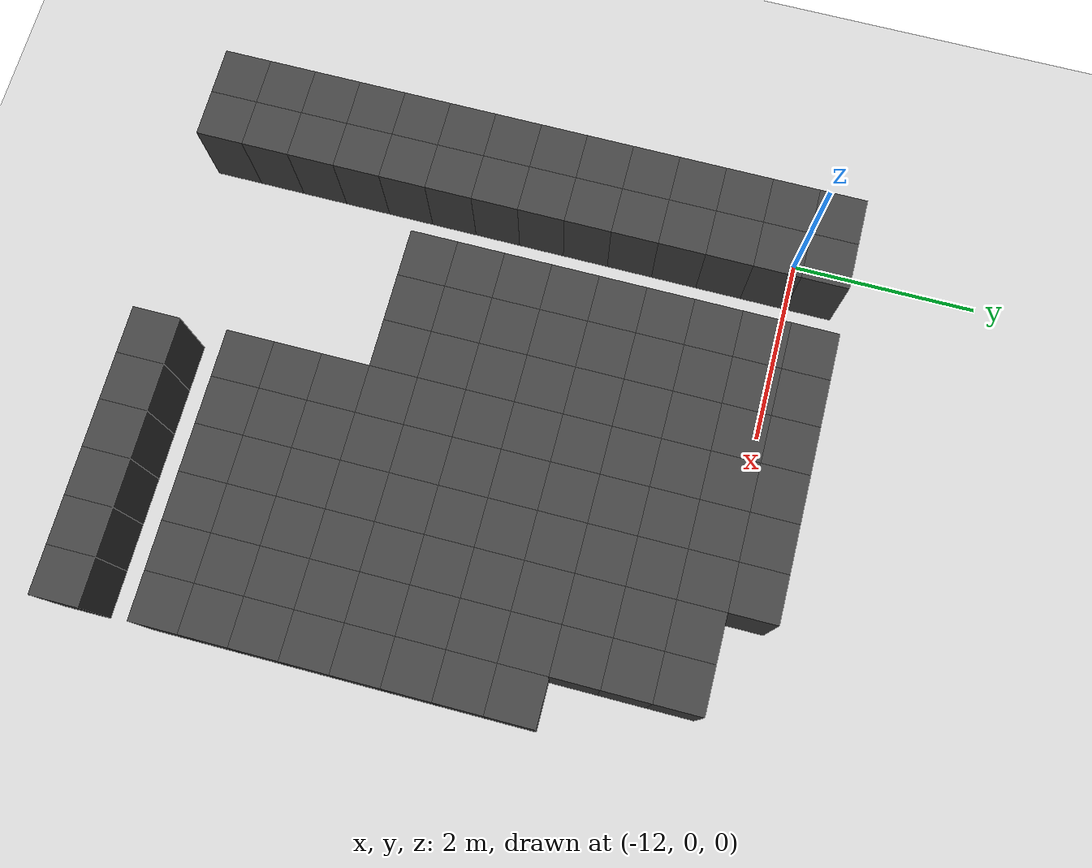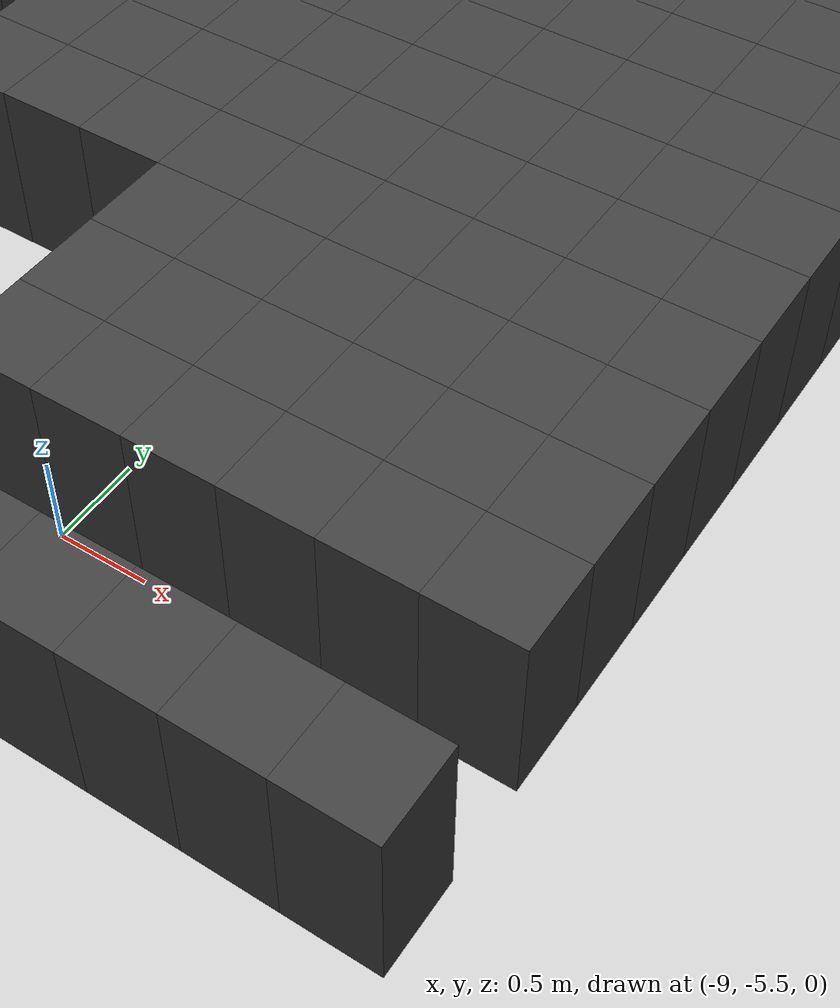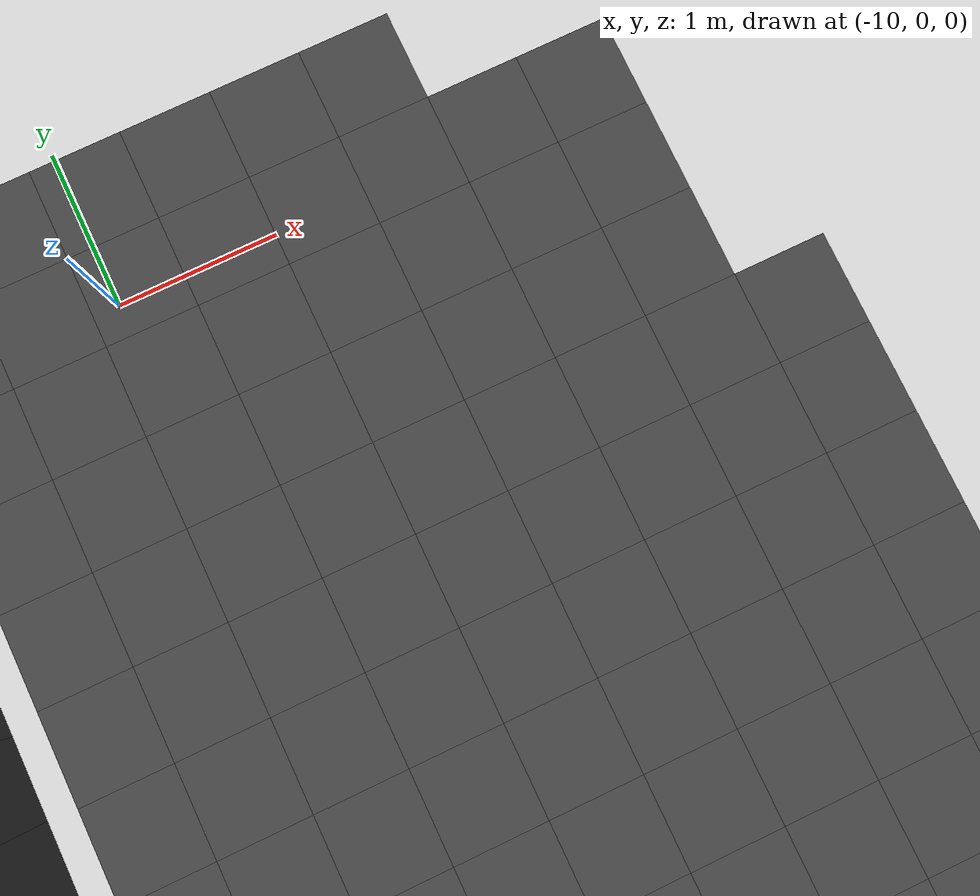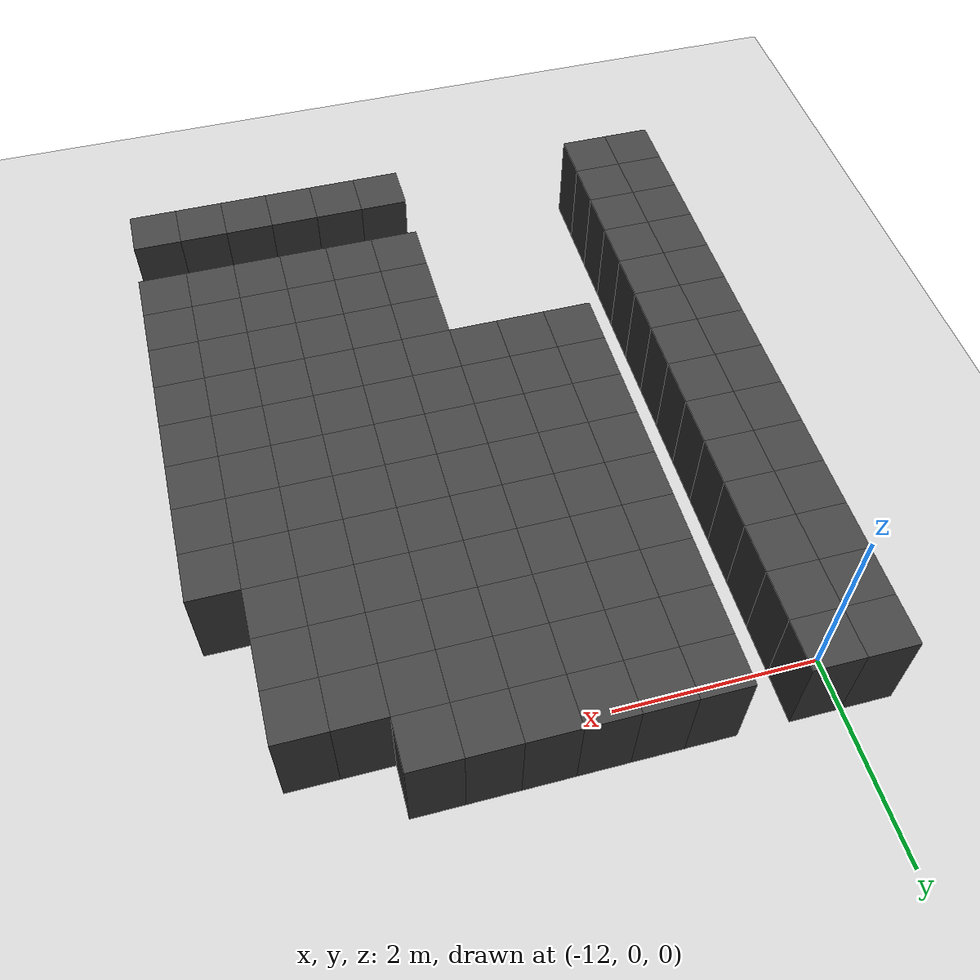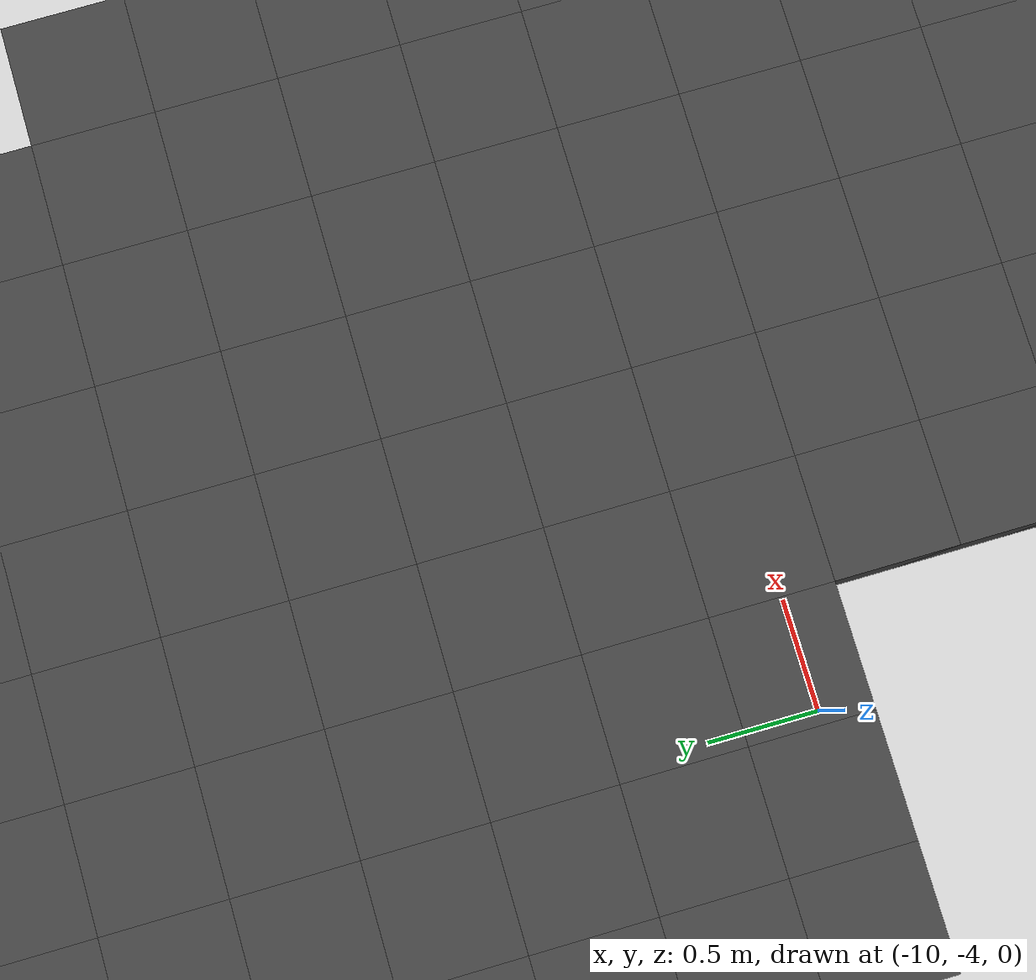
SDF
<sdf version="1.7">
 <world name="map_10777">
  <model name="ground_plane">
   <static>true</static>
   <link name="link">
    <collision name="collision">
     <geometry><plane><normal>0 0 1</normal><size>200 200</size></plane></geometry>
    </collision>
    <visual name="visual">
     <geometry><plane><normal>0 0 1</normal><size>200 200</size></plane></geometry>
     <material><ambient>0.8 0.8 0.8 1</ambient><diffuse>0.8 0.8 0.8 1</diffuse></material>
    </visual>
   </link>
  </model>
  <model name="maze_environment">
   <static>true</static>
   <link name="wall_1091">
    <pose>-12.250 0.250 0.500 0 0 0</pose>
    <collision name="col"><geometry><box><size>0.5 0.5 1.0</size></box></geometry></collision>
    <visual name="vis">
     <geometry><box><size>0.5 0.5 1.0</size></box></geometry>
     <material><ambient>0.15 0.15 0.15 1</ambient><diffuse>0.25 0.25 0.25 1</diffuse></material>
    </visual>
   </link>
   <link name="wall_1092">
    <pose>-11.750 0.250 0.500 0 0 0</pose>
    <collision name="col"><geometry><box><size>0.5 0.5 1.0</size></box></geometry></collision>
    <visual name="vis">
     <geometry><box><size>0.5 0.5 1.0</size></box></geometry>
     <material><ambient>0.15 0.15 0.15 1</ambient><diffuse>0.25 0.25 0.25 1</diffuse></material>
    </visual>
   </link>
   <link name="wall_1093">
    <pose>-10.750 0.250 0.500 0 0 0</pose>
    <collision name="col"><geometry><box><size>0.5 0.5 1.0</size></box></geometry></collision>
    <visual name="vis">
     <geometry><box><size>0.5 0.5 1.0</size></box></geometry>
     <material><ambient>0.15 0.15 0.15 1</ambient><diffuse>0.25 0.25 0.25 1</diffuse></material>
    </visual>
   </link>
   <link name="wall_1094">
    <pose>-10.250 0.250 0.500 0 0 0</pose>
    <collision name="col"><geometry><box><size>0.5 0.5 1.0</size></box></geometry></collision>
    <visual name="vis">
     <geometry><box><size>0.5 0.5 1.0</size></box></geometry>
     <material><ambient>0.15 0.15 0.15 1</ambient><diffuse>0.25 0.25 0.25 1</diffuse></material>
    </visual>
   </link>
   <link name="wall_1095">
    <pose>-9.750 0.250 0.500 0 0 0</pose>
    <collision name="col"><geometry><box><size>0.5 0.5 1.0</size></box></geometry></collision>
    <visual name="vis">
     <geometry><box><size>0.5 0.5 1.0</size></box></geometry>
     <material><ambient>0.15 0.15 0.15 1</ambient><diffuse>0.25 0.25 0.25 1</diffuse></material>
    </visual>
   </link>
   <link name="wall_1096">
    <pose>-9.250 0.250 0.500 0 0 0</pose>
    <collision name="col"><geometry><box><size>0.5 0.5 1.0</size></box></geometry></collision>
    <visual name="vis">
     <geometry><box><size>0.5 0.5 1.0</size></box></geometry>
     <material><ambient>0.15 0.15 0.15 1</ambient><diffuse>0.25 0.25 0.25 1</diffuse></material>
    </visual>
   </link>
   <link name="wall_1097">
    <pose>-8.750 0.250 0.500 0 0 0</pose>
    <collision name="col"><geometry><box><size>0.5 0.5 1.0</size></box></geometry></collision>
    <visual name="vis">
     <geometry><box><size>0.5 0.5 1.0</size></box></geometry>
     <material><ambient>0.15 0.15 0.15 1</ambient><diffuse>0.25 0.25 0.25 1</diffuse></material>
    </visual>
   </link>
   <link name="wall_1098">
    <pose>-8.250 0.250 0.500 0 0 0</pose>
    <collision name="col"><geometry><box><size>0.5 0.5 1.0</size></box></geometry></collision>
    <visual name="vis">
     <geometry><box><size>0.5 0.5 1.0</size></box></geometry>
     <material><ambient>0.15 0.15 0.15 1</ambient><diffuse>0.25 0.25 0.25 1</diffuse></material>
    </visual>
   </link>
   <link name="wall_1129">
    <pose>-12.250 -0.250 0.500 0 0 0</pose>
    <collision name="col"><geometry><box><size>0.5 0.5 1.0</size></box></geometry></collision>
    <visual name="vis">
     <geometry><box><size>0.5 0.5 1.0</size></box></geometry>
     <material><ambient>0.15 0.15 0.15 1</ambient><diffuse>0.25 0.25 0.25 1</diffuse></material>
    </visual>
   </link>
   <link name="wall_1130">
    <pose>-11.750 -0.250 0.500 0 0 0</pose>
    <collision name="col"><geometry><box><size>0.5 0.5 1.0</size></box></geometry></collision>
    <visual name="vis">
     <geometry><box><size>0.5 0.5 1.0</size></box></geometry>
     <material><ambient>0.15 0.15 0.15 1</ambient><diffuse>0.25 0.25 0.25 1</diffuse></material>
    </visual>
   </link>
   <link name="wall_1131">
    <pose>-10.750 -0.250 0.500 0 0 0</pose>
    <collision name="col"><geometry><box><size>0.5 0.5 1.0</size></box></geometry></collision>
    <visual name="vis">
     <geometry><box><size>0.5 0.5 1.0</size></box></geometry>
     <material><ambient>0.15 0.15 0.15 1</ambient><diffuse>0.25 0.25 0.25 1</diffuse></material>
    </visual>
   </link>
   <link name="wall_1132">
    <pose>-10.250 -0.250 0.500 0 0 0</pose>
    <collision name="col"><geometry><box><size>0.5 0.5 1.0</size></box></geometry></collision>
    <visual name="vis">
     <geometry><box><size>0.5 0.5 1.0</size></box></geometry>
     <material><ambient>0.15 0.15 0.15 1</ambient><diffuse>0.25 0.25 0.25 1</diffuse></material>
    </visual>
   </link>
   <link name="wall_1133">
    <pose>-9.750 -0.250 0.500 0 0 0</pose>
    <collision name="col"><geometry><box><size>0.5 0.5 1.0</size></box></geometry></collision>
    <visual name="vis">
     <geometry><box><size>0.5 0.5 1.0</size></box></geometry>
     <material><ambient>0.15 0.15 0.15 1</ambient><diffuse>0.25 0.25 0.25 1</diffuse></material>
    </visual>
   </link>
   <link name="wall_1134">
    <pose>-9.250 -0.250 0.500 0 0 0</pose>
    <collision name="col"><geometry><box><size>0.5 0.5 1.0</size></box></geometry></collision>
    <visual name="vis">
     <geometry><box><size>0.5 0.5 1.0</size></box></geometry>
     <material><ambient>0.15 0.15 0.15 1</ambient><diffuse>0.25 0.25 0.25 1</diffuse></material>
    </visual>
   </link>
   <link name="wall_1135">
    <pose>-8.750 -0.250 0.500 0 0 0</pose>
    <collision name="col"><geometry><box><size>0.5 0.5 1.0</size></box></geometry></collision>
    <visual name="vis">
     <geometry><box><size>0.5 0.5 1.0</size></box></geometry>
     <material><ambient>0.15 0.15 0.15 1</ambient><diffuse>0.25 0.25 0.25 1</diffuse></material>
    </visual>
   </link>
   <link name="wall_1136">
    <pose>-8.250 -0.250 0.500 0 0 0</pose>
    <collision name="col"><geometry><box><size>0.5 0.5 1.0</size></box></geometry></collision>
    <visual name="vis">
     <geometry><box><size>0.5 0.5 1.0</size></box></geometry>
     <material><ambient>0.15 0.15 0.15 1</ambient><diffuse>0.25 0.25 0.25 1</diffuse></material>
    </visual>
   </link>
   <link name="wall_1137">
    <pose>-7.750 -0.250 0.500 0 0 0</pose>
    <collision name="col"><geometry><box><size>0.5 0.5 1.0</size></box></geometry></collision>
    <visual name="vis">
     <geometry><box><size>0.5 0.5 1.0</size></box></geometry>
     <material><ambient>0.15 0.15 0.15 1</ambient><diffuse>0.25 0.25 0.25 1</diffuse></material>
    </visual>
   </link>
   <link name="wall_1138">
    <pose>-7.250 -0.250 0.500 0 0 0</pose>
    <collision name="col"><geometry><box><size>0.5 0.5 1.0</size></box></geometry></collision>
    <visual name="vis">
     <geometry><box><size>0.5 0.5 1.0</size></box></geometry>
     <material><ambient>0.15 0.15 0.15 1</ambient><diffuse>0.25 0.25 0.25 1</diffuse></material>
    </visual>
   </link>
   <link name="wall_1173">
    <pose>-12.250 -0.750 0.500 0 0 0</pose>
    <collision name="col"><geometry><box><size>0.5 0.5 1.0</size></box></geometry></collision>
    <visual name="vis">
     <geometry><box><size>0.5 0.5 1.0</size></box></geometry>
     <material><ambient>0.15 0.15 0.15 1</ambient><diffuse>0.25 0.25 0.25 1</diffuse></material>
    </visual>
   </link>
   <link name="wall_1174">
    <pose>-11.750 -0.750 0.500 0 0 0</pose>
    <collision name="col"><geometry><box><size>0.5 0.5 1.0</size></box></geometry></collision>
    <visual name="vis">
     <geometry><box><size>0.5 0.5 1.0</size></box></geometry>
     <material><ambient>0.15 0.15 0.15 1</ambient><diffuse>0.25 0.25 0.25 1</diffuse></material>
    </visual>
   </link>
   <link name="wall_1175">
    <pose>-10.750 -0.750 0.500 0 0 0</pose>
    <collision name="col"><geometry><box><size>0.5 0.5 1.0</size></box></geometry></collision>
    <visual name="vis">
     <geometry><box><size>0.5 0.5 1.0</size></box></geometry>
     <material><ambient>0.15 0.15 0.15 1</ambient><diffuse>0.25 0.25 0.25 1</diffuse></material>
    </visual>
   </link>
   <link name="wall_1176">
    <pose>-10.250 -0.750 0.500 0 0 0</pose>
    <collision name="col"><geometry><box><size>0.5 0.5 1.0</size></box></geometry></collision>
    <visual name="vis">
     <geometry><box><size>0.5 0.5 1.0</size></box></geometry>
     <material><ambient>0.15 0.15 0.15 1</ambient><diffuse>0.25 0.25 0.25 1</diffuse></material>
    </visual>
   </link>
   <link name="wall_1177">
    <pose>-9.750 -0.750 0.500 0 0 0</pose>
    <collision name="col"><geometry><box><size>0.5 0.5 1.0</size></box></geometry></collision>
    <visual name="vis">
     <geometry><box><size>0.5 0.5 1.0</size></box></geometry>
     <material><ambient>0.15 0.15 0.15 1</ambient><diffuse>0.25 0.25 0.25 1</diffuse></material>
    </visual>
   </link>
   <link name="wall_1178">
    <pose>-9.250 -0.750 0.500 0 0 0</pose>
    <collision name="col"><geometry><box><size>0.5 0.5 1.0</size></box></geometry></collision>
    <visual name="vis">
     <geometry><box><size>0.5 0.5 1.0</size></box></geometry>
     <material><ambient>0.15 0.15 0.15 1</ambient><diffuse>0.25 0.25 0.25 1</diffuse></material>
    </visual>
   </link>
   <link name="wall_1179">
    <pose>-8.750 -0.750 0.500 0 0 0</pose>
    <collision name="col"><geometry><box><size>0.5 0.5 1.0</size></box></geometry></collision>
    <visual name="vis">
     <geometry><box><size>0.5 0.5 1.0</size></box></geometry>
     <material><ambient>0.15 0.15 0.15 1</ambient><diffuse>0.25 0.25 0.25 1</diffuse></material>
    </visual>
   </link>
   <link name="wall_1180">
    <pose>-8.250 -0.750 0.500 0 0 0</pose>
    <collision name="col"><geometry><box><size>0.5 0.5 1.0</size></box></geometry></collision>
    <visual name="vis">
     <geometry><box><size>0.5 0.5 1.0</size></box></geometry>
     <material><ambient>0.15 0.15 0.15 1</ambient><diffuse>0.25 0.25 0.25 1</diffuse></material>
    </visual>
   </link>
   <link name="wall_1181">
    <pose>-7.750 -0.750 0.500 0 0 0</pose>
    <collision name="col"><geometry><box><size>0.5 0.5 1.0</size></box></geometry></collision>
    <visual name="vis">
     <geometry><box><size>0.5 0.5 1.0</size></box></geometry>
     <material><ambient>0.15 0.15 0.15 1</ambient><diffuse>0.25 0.25 0.25 1</diffuse></material>
    </visual>
   </link>
   <link name="wall_1182">
    <pose>-7.250 -0.750 0.500 0 0 0</pose>
    <collision name="col"><geometry><box><size>0.5 0.5 1.0</size></box></geometry></collision>
    <visual name="vis">
     <geometry><box><size>0.5 0.5 1.0</size></box></geometry>
     <material><ambient>0.15 0.15 0.15 1</ambient><diffuse>0.25 0.25 0.25 1</diffuse></material>
    </visual>
   </link>
   <link name="wall_1211">
    <pose>-12.250 -1.250 0.500 0 0 0</pose>
    <collision name="col"><geometry><box><size>0.5 0.5 1.0</size></box></geometry></collision>
    <visual name="vis">
     <geometry><box><size>0.5 0.5 1.0</size></box></geometry>
     <material><ambient>0.15 0.15 0.15 1</ambient><diffuse>0.25 0.25 0.25 1</diffuse></material>
    </visual>
   </link>
   <link name="wall_1212">
    <pose>-11.750 -1.250 0.500 0 0 0</pose>
    <collision name="col"><geometry><box><size>0.5 0.5 1.0</size></box></geometry></collision>
    <visual name="vis">
     <geometry><box><size>0.5 0.5 1.0</size></box></geometry>
     <material><ambient>0.15 0.15 0.15 1</ambient><diffuse>0.25 0.25 0.25 1</diffuse></material>
    </visual>
   </link>
   <link name="wall_1213">
    <pose>-10.750 -1.250 0.500 0 0 0</pose>
    <collision name="col"><geometry><box><size>0.5 0.5 1.0</size></box></geometry></collision>
    <visual name="vis">
     <geometry><box><size>0.5 0.5 1.0</size></box></geometry>
     <material><ambient>0.15 0.15 0.15 1</ambient><diffuse>0.25 0.25 0.25 1</diffuse></material>
    </visual>
   </link>
   <link name="wall_1214">
    <pose>-10.250 -1.250 0.500 0 0 0</pose>
    <collision name="col"><geometry><box><size>0.5 0.5 1.0</size></box></geometry></collision>
    <visual name="vis">
     <geometry><box><size>0.5 0.5 1.0</size></box></geometry>
     <material><ambient>0.15 0.15 0.15 1</ambient><diffuse>0.25 0.25 0.25 1</diffuse></material>
    </visual>
   </link>
   <link name="wall_1215">
    <pose>-9.750 -1.250 0.500 0 0 0</pose>
    <collision name="col"><geometry><box><size>0.5 0.5 1.0</size></box></geometry></collision>
    <visual name="vis">
     <geometry><box><size>0.5 0.5 1.0</size></box></geometry>
     <material><ambient>0.15 0.15 0.15 1</ambient><diffuse>0.25 0.25 0.25 1</diffuse></material>
    </visual>
   </link>
   <link name="wall_1216">
    <pose>-9.250 -1.250 0.500 0 0 0</pose>
    <collision name="col"><geometry><box><size>0.5 0.5 1.0</size></box></geometry></collision>
    <visual name="vis">
     <geometry><box><size>0.5 0.5 1.0</size></box></geometry>
     <material><ambient>0.15 0.15 0.15 1</ambient><diffuse>0.25 0.25 0.25 1</diffuse></material>
    </visual>
   </link>
   <link name="wall_1217">
    <pose>-8.750 -1.250 0.500 0 0 0</pose>
    <collision name="col"><geometry><box><size>0.5 0.5 1.0</size></box></geometry></collision>
    <visual name="vis">
     <geometry><box><size>0.5 0.5 1.0</size></box></geometry>
     <material><ambient>0.15 0.15 0.15 1</ambient><diffuse>0.25 0.25 0.25 1</diffuse></material>
    </visual>
   </link>
   <link name="wall_1218">
    <pose>-8.250 -1.250 0.500 0 0 0</pose>
    <collision name="col"><geometry><box><size>0.5 0.5 1.0</size></box></geometry></collision>
    <visual name="vis">
     <geometry><box><size>0.5 0.5 1.0</size></box></geometry>
     <material><ambient>0.15 0.15 0.15 1</ambient><diffuse>0.25 0.25 0.25 1</diffuse></material>
    </visual>
   </link>
   <link name="wall_1219">
    <pose>-7.750 -1.250 0.500 0 0 0</pose>
    <collision name="col"><geometry><box><size>0.5 0.5 1.0</size></box></geometry></collision>
    <visual name="vis">
     <geometry><box><size>0.5 0.5 1.0</size></box></geometry>
     <material><ambient>0.15 0.15 0.15 1</ambient><diffuse>0.25 0.25 0.25 1</diffuse></material>
    </visual>
   </link>
   <link name="wall_1220">
    <pose>-7.250 -1.250 0.500 0 0 0</pose>
    <collision name="col"><geometry><box><size>0.5 0.5 1.0</size></box></geometry></collision>
    <visual name="vis">
     <geometry><box><size>0.5 0.5 1.0</size></box></geometry>
     <material><ambient>0.15 0.15 0.15 1</ambient><diffuse>0.25 0.25 0.25 1</diffuse></material>
    </visual>
   </link>
   <link name="wall_1254">
    <pose>-12.250 -1.750 0.500 0 0 0</pose>
    <collision name="col"><geometry><box><size>0.5 0.5 1.0</size></box></geometry></collision>
    <visual name="vis">
     <geometry><box><size>0.5 0.5 1.0</size></box></geometry>
     <material><ambient>0.15 0.15 0.15 1</ambient><diffuse>0.25 0.25 0.25 1</diffuse></material>
    </visual>
   </link>
   <link name="wall_1255">
    <pose>-11.750 -1.750 0.500 0 0 0</pose>
    <collision name="col"><geometry><box><size>0.5 0.5 1.0</size></box></geometry></collision>
    <visual name="vis">
     <geometry><box><size>0.5 0.5 1.0</size></box></geometry>
     <material><ambient>0.15 0.15 0.15 1</ambient><diffuse>0.25 0.25 0.25 1</diffuse></material>
    </visual>
   </link>
   <link name="wall_1256">
    <pose>-10.750 -1.750 0.500 0 0 0</pose>
    <collision name="col"><geometry><box><size>0.5 0.5 1.0</size></box></geometry></collision>
    <visual name="vis">
     <geometry><box><size>0.5 0.5 1.0</size></box></geometry>
     <material><ambient>0.15 0.15 0.15 1</ambient><diffuse>0.25 0.25 0.25 1</diffuse></material>
    </visual>
   </link>
   <link name="wall_1257">
    <pose>-10.250 -1.750 0.500 0 0 0</pose>
    <collision name="col"><geometry><box><size>0.5 0.5 1.0</size></box></geometry></collision>
    <visual name="vis">
     <geometry><box><size>0.5 0.5 1.0</size></box></geometry>
     <material><ambient>0.15 0.15 0.15 1</ambient><diffuse>0.25 0.25 0.25 1</diffuse></material>
    </visual>
   </link>
   <link name="wall_1258">
    <pose>-9.750 -1.750 0.500 0 0 0</pose>
    <collision name="col"><geometry><box><size>0.5 0.5 1.0</size></box></geometry></collision>
    <visual name="vis">
     <geometry><box><size>0.5 0.5 1.0</size></box></geometry>
     <material><ambient>0.15 0.15 0.15 1</ambient><diffuse>0.25 0.25 0.25 1</diffuse></material>
    </visual>
   </link>
   <link name="wall_1259">
    <pose>-9.250 -1.750 0.500 0 0 0</pose>
    <collision name="col"><geometry><box><size>0.5 0.5 1.0</size></box></geometry></collision>
    <visual name="vis">
     <geometry><box><size>0.5 0.5 1.0</size></box></geometry>
     <material><ambient>0.15 0.15 0.15 1</ambient><diffuse>0.25 0.25 0.25 1</diffuse></material>
    </visual>
   </link>
   <link name="wall_1260">
    <pose>-8.750 -1.750 0.500 0 0 0</pose>
    <collision name="col"><geometry><box><size>0.5 0.5 1.0</size></box></geometry></collision>
    <visual name="vis">
     <geometry><box><size>0.5 0.5 1.0</size></box></geometry>
     <material><ambient>0.15 0.15 0.15 1</ambient><diffuse>0.25 0.25 0.25 1</diffuse></material>
    </visual>
   </link>
   <link name="wall_1261">
    <pose>-8.250 -1.750 0.500 0 0 0</pose>
    <collision name="col"><geometry><box><size>0.5 0.5 1.0</size></box></geometry></collision>
    <visual name="vis">
     <geometry><box><size>0.5 0.5 1.0</size></box></geometry>
     <material><ambient>0.15 0.15 0.15 1</ambient><diffuse>0.25 0.25 0.25 1</diffuse></material>
    </visual>
   </link>
   <link name="wall_1262">
    <pose>-7.750 -1.750 0.500 0 0 0</pose>
    <collision name="col"><geometry><box><size>0.5 0.5 1.0</size></box></geometry></collision>
    <visual name="vis">
     <geometry><box><size>0.5 0.5 1.0</size></box></geometry>
     <material><ambient>0.15 0.15 0.15 1</ambient><diffuse>0.25 0.25 0.25 1</diffuse></material>
    </visual>
   </link>
   <link name="wall_1263">
    <pose>-7.250 -1.750 0.500 0 0 0</pose>
    <collision name="col"><geometry><box><size>0.5 0.5 1.0</size></box></geometry></collision>
    <visual name="vis">
     <geometry><box><size>0.5 0.5 1.0</size></box></geometry>
     <material><ambient>0.15 0.15 0.15 1</ambient><diffuse>0.25 0.25 0.25 1</diffuse></material>
    </visual>
   </link>
   <link name="wall_1264">
    <pose>-6.750 -1.750 0.500 0 0 0</pose>
    <collision name="col"><geometry><box><size>0.5 0.5 1.0</size></box></geometry></collision>
    <visual name="vis">
     <geometry><box><size>0.5 0.5 1.0</size></box></geometry>
     <material><ambient>0.15 0.15 0.15 1</ambient><diffuse>0.25 0.25 0.25 1</diffuse></material>
    </visual>
   </link>
   <link name="wall_1297">
    <pose>-12.250 -2.250 0.500 0 0 0</pose>
    <collision name="col"><geometry><box><size>0.5 0.5 1.0</size></box></geometry></collision>
    <visual name="vis">
     <geometry><box><size>0.5 0.5 1.0</size></box></geometry>
     <material><ambient>0.15 0.15 0.15 1</ambient><diffuse>0.25 0.25 0.25 1</diffuse></material>
    </visual>
   </link>
   <link name="wall_1298">
    <pose>-11.750 -2.250 0.500 0 0 0</pose>
    <collision name="col"><geometry><box><size>0.5 0.5 1.0</size></box></geometry></collision>
    <visual name="vis">
     <geometry><box><size>0.5 0.5 1.0</size></box></geometry>
     <material><ambient>0.15 0.15 0.15 1</ambient><diffuse>0.25 0.25 0.25 1</diffuse></material>
    </visual>
   </link>
   <link name="wall_1299">
    <pose>-10.750 -2.250 0.500 0 0 0</pose>
    <collision name="col"><geometry><box><size>0.5 0.5 1.0</size></box></geometry></collision>
    <visual name="vis">
     <geometry><box><size>0.5 0.5 1.0</size></box></geometry>
     <material><ambient>0.15 0.15 0.15 1</ambient><diffuse>0.25 0.25 0.25 1</diffuse></material>
    </visual>
   </link>
   <link name="wall_1300">
    <pose>-10.250 -2.250 0.500 0 0 0</pose>
    <collision name="col"><geometry><box><size>0.5 0.5 1.0</size></box></geometry></collision>
    <visual name="vis">
     <geometry><box><size>0.5 0.5 1.0</size></box></geometry>
     <material><ambient>0.15 0.15 0.15 1</ambient><diffuse>0.25 0.25 0.25 1</diffuse></material>
    </visual>
   </link>
   <link name="wall_1301">
    <pose>-9.750 -2.250 0.500 0 0 0</pose>
    <collision name="col"><geometry><box><size>0.5 0.5 1.0</size></box></geometry></collision>
    <visual name="vis">
     <geometry><box><size>0.5 0.5 1.0</size></box></geometry>
     <material><ambient>0.15 0.15 0.15 1</ambient><diffuse>0.25 0.25 0.25 1</diffuse></material>
    </visual>
   </link>
   <link name="wall_1302">
    <pose>-9.250 -2.250 0.500 0 0 0</pose>
    <collision name="col"><geometry><box><size>0.5 0.5 1.0</size></box></geometry></collision>
    <visual name="vis">
     <geometry><box><size>0.5 0.5 1.0</size></box></geometry>
     <material><ambient>0.15 0.15 0.15 1</ambient><diffuse>0.25 0.25 0.25 1</diffuse></material>
    </visual>
   </link>
   <link name="wall_1303">
    <pose>-8.750 -2.250 0.500 0 0 0</pose>
    <collision name="col"><geometry><box><size>0.5 0.5 1.0</size></box></geometry></collision>
    <visual name="vis">
     <geometry><box><size>0.5 0.5 1.0</size></box></geometry>
     <material><ambient>0.15 0.15 0.15 1</ambient><diffuse>0.25 0.25 0.25 1</diffuse></material>
    </visual>
   </link>
   <link name="wall_1304">
    <pose>-8.250 -2.250 0.500 0 0 0</pose>
    <collision name="col"><geometry><box><size>0.5 0.5 1.0</size></box></geometry></collision>
    <visual name="vis">
     <geometry><box><size>0.5 0.5 1.0</size></box></geometry>
     <material><ambient>0.15 0.15 0.15 1</ambient><diffuse>0.25 0.25 0.25 1</diffuse></material>
    </visual>
   </link>
   <link name="wall_1305">
    <pose>-7.750 -2.250 0.500 0 0 0</pose>
    <collision name="col"><geometry><box><size>0.5 0.5 1.0</size></box></geometry></collision>
    <visual name="vis">
     <geometry><box><size>0.5 0.5 1.0</size></box></geometry>
     <material><ambient>0.15 0.15 0.15 1</ambient><diffuse>0.25 0.25 0.25 1</diffuse></material>
    </visual>
   </link>
   <link name="wall_1306">
    <pose>-7.250 -2.250 0.500 0 0 0</pose>
    <collision name="col"><geometry><box><size>0.5 0.5 1.0</size></box></geometry></collision>
    <visual name="vis">
     <geometry><box><size>0.5 0.5 1.0</size></box></geometry>
     <material><ambient>0.15 0.15 0.15 1</ambient><diffuse>0.25 0.25 0.25 1</diffuse></material>
    </visual>
   </link>
   <link name="wall_1307">
    <pose>-6.750 -2.250 0.500 0 0 0</pose>
    <collision name="col"><geometry><box><size>0.5 0.5 1.0</size></box></geometry></collision>
    <visual name="vis">
     <geometry><box><size>0.5 0.5 1.0</size></box></geometry>
     <material><ambient>0.15 0.15 0.15 1</ambient><diffuse>0.25 0.25 0.25 1</diffuse></material>
    </visual>
   </link>
   <link name="wall_1345">
    <pose>-12.250 -2.750 0.500 0 0 0</pose>
    <collision name="col"><geometry><box><size>0.5 0.5 1.0</size></box></geometry></collision>
    <visual name="vis">
     <geometry><box><size>0.5 0.5 1.0</size></box></geometry>
     <material><ambient>0.15 0.15 0.15 1</ambient><diffuse>0.25 0.25 0.25 1</diffuse></material>
    </visual>
   </link>
   <link name="wall_1346">
    <pose>-11.750 -2.750 0.500 0 0 0</pose>
    <collision name="col"><geometry><box><size>0.5 0.5 1.0</size></box></geometry></collision>
    <visual name="vis">
     <geometry><box><size>0.5 0.5 1.0</size></box></geometry>
     <material><ambient>0.15 0.15 0.15 1</ambient><diffuse>0.25 0.25 0.25 1</diffuse></material>
    </visual>
   </link>
   <link name="wall_1347">
    <pose>-10.750 -2.750 0.500 0 0 0</pose>
    <collision name="col"><geometry><box><size>0.5 0.5 1.0</size></box></geometry></collision>
    <visual name="vis">
     <geometry><box><size>0.5 0.5 1.0</size></box></geometry>
     <material><ambient>0.15 0.15 0.15 1</ambient><diffuse>0.25 0.25 0.25 1</diffuse></material>
    </visual>
   </link>
   <link name="wall_1348">
    <pose>-10.250 -2.750 0.500 0 0 0</pose>
    <collision name="col"><geometry><box><size>0.5 0.5 1.0</size></box></geometry></collision>
    <visual name="vis">
     <geometry><box><size>0.5 0.5 1.0</size></box></geometry>
     <material><ambient>0.15 0.15 0.15 1</ambient><diffuse>0.25 0.25 0.25 1</diffuse></material>
    </visual>
   </link>
   <link name="wall_1349">
    <pose>-9.750 -2.750 0.500 0 0 0</pose>
    <collision name="col"><geometry><box><size>0.5 0.5 1.0</size></box></geometry></collision>
    <visual name="vis">
     <geometry><box><size>0.5 0.5 1.0</size></box></geometry>
     <material><ambient>0.15 0.15 0.15 1</ambient><diffuse>0.25 0.25 0.25 1</diffuse></material>
    </visual>
   </link>
   <link name="wall_1350">
    <pose>-9.250 -2.750 0.500 0 0 0</pose>
    <collision name="col"><geometry><box><size>0.5 0.5 1.0</size></box></geometry></collision>
    <visual name="vis">
     <geometry><box><size>0.5 0.5 1.0</size></box></geometry>
     <material><ambient>0.15 0.15 0.15 1</ambient><diffuse>0.25 0.25 0.25 1</diffuse></material>
    </visual>
   </link>
   <link name="wall_1351">
    <pose>-8.750 -2.750 0.500 0 0 0</pose>
    <collision name="col"><geometry><box><size>0.5 0.5 1.0</size></box></geometry></collision>
    <visual name="vis">
     <geometry><box><size>0.5 0.5 1.0</size></box></geometry>
     <material><ambient>0.15 0.15 0.15 1</ambient><diffuse>0.25 0.25 0.25 1</diffuse></material>
    </visual>
   </link>
   <link name="wall_1352">
    <pose>-8.250 -2.750 0.500 0 0 0</pose>
    <collision name="col"><geometry><box><size>0.5 0.5 1.0</size></box></geometry></collision>
    <visual name="vis">
     <geometry><box><size>0.5 0.5 1.0</size></box></geometry>
     <material><ambient>0.15 0.15 0.15 1</ambient><diffuse>0.25 0.25 0.25 1</diffuse></material>
    </visual>
   </link>
   <link name="wall_1353">
    <pose>-7.750 -2.750 0.500 0 0 0</pose>
    <collision name="col"><geometry><box><size>0.5 0.5 1.0</size></box></geometry></collision>
    <visual name="vis">
     <geometry><box><size>0.5 0.5 1.0</size></box></geometry>
     <material><ambient>0.15 0.15 0.15 1</ambient><diffuse>0.25 0.25 0.25 1</diffuse></material>
    </visual>
   </link>
   <link name="wall_1354">
    <pose>-7.250 -2.750 0.500 0 0 0</pose>
    <collision name="col"><geometry><box><size>0.5 0.5 1.0</size></box></geometry></collision>
    <visual name="vis">
     <geometry><box><size>0.5 0.5 1.0</size></box></geometry>
     <material><ambient>0.15 0.15 0.15 1</ambient><diffuse>0.25 0.25 0.25 1</diffuse></material>
    </visual>
   </link>
   <link name="wall_1355">
    <pose>-6.750 -2.750 0.500 0 0 0</pose>
    <collision name="col"><geometry><box><size>0.5 0.5 1.0</size></box></geometry></collision>
    <visual name="vis">
     <geometry><box><size>0.5 0.5 1.0</size></box></geometry>
     <material><ambient>0.15 0.15 0.15 1</ambient><diffuse>0.25 0.25 0.25 1</diffuse></material>
    </visual>
   </link>
   <link name="wall_1393">
    <pose>-12.250 -3.250 0.500 0 0 0</pose>
    <collision name="col"><geometry><box><size>0.5 0.5 1.0</size></box></geometry></collision>
    <visual name="vis">
     <geometry><box><size>0.5 0.5 1.0</size></box></geometry>
     <material><ambient>0.15 0.15 0.15 1</ambient><diffuse>0.25 0.25 0.25 1</diffuse></material>
    </visual>
   </link>
   <link name="wall_1394">
    <pose>-11.750 -3.250 0.500 0 0 0</pose>
    <collision name="col"><geometry><box><size>0.5 0.5 1.0</size></box></geometry></collision>
    <visual name="vis">
     <geometry><box><size>0.5 0.5 1.0</size></box></geometry>
     <material><ambient>0.15 0.15 0.15 1</ambient><diffuse>0.25 0.25 0.25 1</diffuse></material>
    </visual>
   </link>
   <link name="wall_1395">
    <pose>-10.750 -3.250 0.500 0 0 0</pose>
    <collision name="col"><geometry><box><size>0.5 0.5 1.0</size></box></geometry></collision>
    <visual name="vis">
     <geometry><box><size>0.5 0.5 1.0</size></box></geometry>
     <material><ambient>0.15 0.15 0.15 1</ambient><diffuse>0.25 0.25 0.25 1</diffuse></material>
    </visual>
   </link>
   <link name="wall_1396">
    <pose>-10.250 -3.250 0.500 0 0 0</pose>
    <collision name="col"><geometry><box><size>0.5 0.5 1.0</size></box></geometry></collision>
    <visual name="vis">
     <geometry><box><size>0.5 0.5 1.0</size></box></geometry>
     <material><ambient>0.15 0.15 0.15 1</ambient><diffuse>0.25 0.25 0.25 1</diffuse></material>
    </visual>
   </link>
   <link name="wall_1397">
    <pose>-9.750 -3.250 0.500 0 0 0</pose>
    <collision name="col"><geometry><box><size>0.5 0.5 1.0</size></box></geometry></collision>
    <visual name="vis">
     <geometry><box><size>0.5 0.5 1.0</size></box></geometry>
     <material><ambient>0.15 0.15 0.15 1</ambient><diffuse>0.25 0.25 0.25 1</diffuse></material>
    </visual>
   </link>
   <link name="wall_1398">
    <pose>-9.250 -3.250 0.500 0 0 0</pose>
    <collision name="col"><geometry><box><size>0.5 0.5 1.0</size></box></geometry></collision>
    <visual name="vis">
     <geometry><box><size>0.5 0.5 1.0</size></box></geometry>
     <material><ambient>0.15 0.15 0.15 1</ambient><diffuse>0.25 0.25 0.25 1</diffuse></material>
    </visual>
   </link>
   <link name="wall_1399">
    <pose>-8.750 -3.250 0.500 0 0 0</pose>
    <collision name="col"><geometry><box><size>0.5 0.5 1.0</size></box></geometry></collision>
    <visual name="vis">
     <geometry><box><size>0.5 0.5 1.0</size></box></geometry>
     <material><ambient>0.15 0.15 0.15 1</ambient><diffuse>0.25 0.25 0.25 1</diffuse></material>
    </visual>
   </link>
   <link name="wall_1400">
    <pose>-8.250 -3.250 0.500 0 0 0</pose>
    <collision name="col"><geometry><box><size>0.5 0.5 1.0</size></box></geometry></collision>
    <visual name="vis">
     <geometry><box><size>0.5 0.5 1.0</size></box></geometry>
     <material><ambient>0.15 0.15 0.15 1</ambient><diffuse>0.25 0.25 0.25 1</diffuse></material>
    </visual>
   </link>
   <link name="wall_1401">
    <pose>-7.750 -3.250 0.500 0 0 0</pose>
    <collision name="col"><geometry><box><size>0.5 0.5 1.0</size></box></geometry></collision>
    <visual name="vis">
     <geometry><box><size>0.5 0.5 1.0</size></box></geometry>
     <material><ambient>0.15 0.15 0.15 1</ambient><diffuse>0.25 0.25 0.25 1</diffuse></material>
    </visual>
   </link>
   <link name="wall_1402">
    <pose>-7.250 -3.250 0.500 0 0 0</pose>
    <collision name="col"><geometry><box><size>0.5 0.5 1.0</size></box></geometry></collision>
    <visual name="vis">
     <geometry><box><size>0.5 0.5 1.0</size></box></geometry>
     <material><ambient>0.15 0.15 0.15 1</ambient><diffuse>0.25 0.25 0.25 1</diffuse></material>
    </visual>
   </link>
   <link name="wall_1403">
    <pose>-6.750 -3.250 0.500 0 0 0</pose>
    <collision name="col"><geometry><box><size>0.5 0.5 1.0</size></box></geometry></collision>
    <visual name="vis">
     <geometry><box><size>0.5 0.5 1.0</size></box></geometry>
     <material><ambient>0.15 0.15 0.15 1</ambient><diffuse>0.25 0.25 0.25 1</diffuse></material>
    </visual>
   </link>
   <link name="wall_1441">
    <pose>-12.250 -3.750 0.500 0 0 0</pose>
    <collision name="col"><geometry><box><size>0.5 0.5 1.0</size></box></geometry></collision>
    <visual name="vis">
     <geometry><box><size>0.5 0.5 1.0</size></box></geometry>
     <material><ambient>0.15 0.15 0.15 1</ambient><diffuse>0.25 0.25 0.25 1</diffuse></material>
    </visual>
   </link>
   <link name="wall_1442">
    <pose>-11.750 -3.750 0.500 0 0 0</pose>
    <collision name="col"><geometry><box><size>0.5 0.5 1.0</size></box></geometry></collision>
    <visual name="vis">
     <geometry><box><size>0.5 0.5 1.0</size></box></geometry>
     <material><ambient>0.15 0.15 0.15 1</ambient><diffuse>0.25 0.25 0.25 1</diffuse></material>
    </visual>
   </link>
   <link name="wall_1443">
    <pose>-10.750 -3.750 0.500 0 0 0</pose>
    <collision name="col"><geometry><box><size>0.5 0.5 1.0</size></box></geometry></collision>
    <visual name="vis">
     <geometry><box><size>0.5 0.5 1.0</size></box></geometry>
     <material><ambient>0.15 0.15 0.15 1</ambient><diffuse>0.25 0.25 0.25 1</diffuse></material>
    </visual>
   </link>
   <link name="wall_1444">
    <pose>-10.250 -3.750 0.500 0 0 0</pose>
    <collision name="col"><geometry><box><size>0.5 0.5 1.0</size></box></geometry></collision>
    <visual name="vis">
     <geometry><box><size>0.5 0.5 1.0</size></box></geometry>
     <material><ambient>0.15 0.15 0.15 1</ambient><diffuse>0.25 0.25 0.25 1</diffuse></material>
    </visual>
   </link>
   <link name="wall_1445">
    <pose>-9.750 -3.750 0.500 0 0 0</pose>
    <collision name="col"><geometry><box><size>0.5 0.5 1.0</size></box></geometry></collision>
    <visual name="vis">
     <geometry><box><size>0.5 0.5 1.0</size></box></geometry>
     <material><ambient>0.15 0.15 0.15 1</ambient><diffuse>0.25 0.25 0.25 1</diffuse></material>
    </visual>
   </link>
   <link name="wall_1446">
    <pose>-9.250 -3.750 0.500 0 0 0</pose>
    <collision name="col"><geometry><box><size>0.5 0.5 1.0</size></box></geometry></collision>
    <visual name="vis">
     <geometry><box><size>0.5 0.5 1.0</size></box></geometry>
     <material><ambient>0.15 0.15 0.15 1</ambient><diffuse>0.25 0.25 0.25 1</diffuse></material>
    </visual>
   </link>
   <link name="wall_1447">
    <pose>-8.750 -3.750 0.500 0 0 0</pose>
    <collision name="col"><geometry><box><size>0.5 0.5 1.0</size></box></geometry></collision>
    <visual name="vis">
     <geometry><box><size>0.5 0.5 1.0</size></box></geometry>
     <material><ambient>0.15 0.15 0.15 1</ambient><diffuse>0.25 0.25 0.25 1</diffuse></material>
    </visual>
   </link>
   <link name="wall_1448">
    <pose>-8.250 -3.750 0.500 0 0 0</pose>
    <collision name="col"><geometry><box><size>0.5 0.5 1.0</size></box></geometry></collision>
    <visual name="vis">
     <geometry><box><size>0.5 0.5 1.0</size></box></geometry>
     <material><ambient>0.15 0.15 0.15 1</ambient><diffuse>0.25 0.25 0.25 1</diffuse></material>
    </visual>
   </link>
   <link name="wall_1449">
    <pose>-7.750 -3.750 0.500 0 0 0</pose>
    <collision name="col"><geometry><box><size>0.5 0.5 1.0</size></box></geometry></collision>
    <visual name="vis">
     <geometry><box><size>0.5 0.5 1.0</size></box></geometry>
     <material><ambient>0.15 0.15 0.15 1</ambient><diffuse>0.25 0.25 0.25 1</diffuse></material>
    </visual>
   </link>
   <link name="wall_1450">
    <pose>-7.250 -3.750 0.500 0 0 0</pose>
    <collision name="col"><geometry><box><size>0.5 0.5 1.0</size></box></geometry></collision>
    <visual name="vis">
     <geometry><box><size>0.5 0.5 1.0</size></box></geometry>
     <material><ambient>0.15 0.15 0.15 1</ambient><diffuse>0.25 0.25 0.25 1</diffuse></material>
    </visual>
   </link>
   <link name="wall_1451">
    <pose>-6.750 -3.750 0.500 0 0 0</pose>
    <collision name="col"><geometry><box><size>0.5 0.5 1.0</size></box></geometry></collision>
    <visual name="vis">
     <geometry><box><size>0.5 0.5 1.0</size></box></geometry>
     <material><ambient>0.15 0.15 0.15 1</ambient><diffuse>0.25 0.25 0.25 1</diffuse></material>
    </visual>
   </link>
   <link name="wall_1483">
    <pose>-12.250 -4.250 0.500 0 0 0</pose>
    <collision name="col"><geometry><box><size>0.5 0.5 1.0</size></box></geometry></collision>
    <visual name="vis">
     <geometry><box><size>0.5 0.5 1.0</size></box></geometry>
     <material><ambient>0.15 0.15 0.15 1</ambient><diffuse>0.25 0.25 0.25 1</diffuse></material>
    </visual>
   </link>
   <link name="wall_1484">
    <pose>-11.750 -4.250 0.500 0 0 0</pose>
    <collision name="col"><geometry><box><size>0.5 0.5 1.0</size></box></geometry></collision>
    <visual name="vis">
     <geometry><box><size>0.5 0.5 1.0</size></box></geometry>
     <material><ambient>0.15 0.15 0.15 1</ambient><diffuse>0.25 0.25 0.25 1</diffuse></material>
    </visual>
   </link>
   <link name="wall_1485">
    <pose>-9.250 -4.250 0.500 0 0 0</pose>
    <collision name="col"><geometry><box><size>0.5 0.5 1.0</size></box></geometry></collision>
    <visual name="vis">
     <geometry><box><size>0.5 0.5 1.0</size></box></geometry>
     <material><ambient>0.15 0.15 0.15 1</ambient><diffuse>0.25 0.25 0.25 1</diffuse></material>
    </visual>
   </link>
   <link name="wall_1486">
    <pose>-8.750 -4.250 0.500 0 0 0</pose>
    <collision name="col"><geometry><box><size>0.5 0.5 1.0</size></box></geometry></collision>
    <visual name="vis">
     <geometry><box><size>0.5 0.5 1.0</size></box></geometry>
     <material><ambient>0.15 0.15 0.15 1</ambient><diffuse>0.25 0.25 0.25 1</diffuse></material>
    </visual>
   </link>
   <link name="wall_1487">
    <pose>-8.250 -4.250 0.500 0 0 0</pose>
    <collision name="col"><geometry><box><size>0.5 0.5 1.0</size></box></geometry></collision>
    <visual name="vis">
     <geometry><box><size>0.5 0.5 1.0</size></box></geometry>
     <material><ambient>0.15 0.15 0.15 1</ambient><diffuse>0.25 0.25 0.25 1</diffuse></material>
    </visual>
   </link>
   <link name="wall_1488">
    <pose>-7.750 -4.250 0.500 0 0 0</pose>
    <collision name="col"><geometry><box><size>0.5 0.5 1.0</size></box></geometry></collision>
    <visual name="vis">
     <geometry><box><size>0.5 0.5 1.0</size></box></geometry>
     <material><ambient>0.15 0.15 0.15 1</ambient><diffuse>0.25 0.25 0.25 1</diffuse></material>
    </visual>
   </link>
   <link name="wall_1489">
    <pose>-7.250 -4.250 0.500 0 0 0</pose>
    <collision name="col"><geometry><box><size>0.5 0.5 1.0</size></box></geometry></collision>
    <visual name="vis">
     <geometry><box><size>0.5 0.5 1.0</size></box></geometry>
     <material><ambient>0.15 0.15 0.15 1</ambient><diffuse>0.25 0.25 0.25 1</diffuse></material>
    </visual>
   </link>
   <link name="wall_1490">
    <pose>-6.750 -4.250 0.500 0 0 0</pose>
    <collision name="col"><geometry><box><size>0.5 0.5 1.0</size></box></geometry></collision>
    <visual name="vis">
     <geometry><box><size>0.5 0.5 1.0</size></box></geometry>
     <material><ambient>0.15 0.15 0.15 1</ambient><diffuse>0.25 0.25 0.25 1</diffuse></material>
    </visual>
   </link>
   <link name="wall_1522">
    <pose>-12.250 -4.750 0.500 0 0 0</pose>
    <collision name="col"><geometry><box><size>0.5 0.5 1.0</size></box></geometry></collision>
    <visual name="vis">
     <geometry><box><size>0.5 0.5 1.0</size></box></geometry>
     <material><ambient>0.15 0.15 0.15 1</ambient><diffuse>0.25 0.25 0.25 1</diffuse></material>
    </visual>
   </link>
   <link name="wall_1523">
    <pose>-11.750 -4.750 0.500 0 0 0</pose>
    <collision name="col"><geometry><box><size>0.5 0.5 1.0</size></box></geometry></collision>
    <visual name="vis">
     <geometry><box><size>0.5 0.5 1.0</size></box></geometry>
     <material><ambient>0.15 0.15 0.15 1</ambient><diffuse>0.25 0.25 0.25 1</diffuse></material>
    </visual>
   </link>
   <link name="wall_1524">
    <pose>-9.250 -4.750 0.500 0 0 0</pose>
    <collision name="col"><geometry><box><size>0.5 0.5 1.0</size></box></geometry></collision>
    <visual name="vis">
     <geometry><box><size>0.5 0.5 1.0</size></box></geometry>
     <material><ambient>0.15 0.15 0.15 1</ambient><diffuse>0.25 0.25 0.25 1</diffuse></material>
    </visual>
   </link>
   <link name="wall_1525">
    <pose>-8.750 -4.750 0.500 0 0 0</pose>
    <collision name="col"><geometry><box><size>0.5 0.5 1.0</size></box></geometry></collision>
    <visual name="vis">
     <geometry><box><size>0.5 0.5 1.0</size></box></geometry>
     <material><ambient>0.15 0.15 0.15 1</ambient><diffuse>0.25 0.25 0.25 1</diffuse></material>
    </visual>
   </link>
   <link name="wall_1526">
    <pose>-8.250 -4.750 0.500 0 0 0</pose>
    <collision name="col"><geometry><box><size>0.5 0.5 1.0</size></box></geometry></collision>
    <visual name="vis">
     <geometry><box><size>0.5 0.5 1.0</size></box></geometry>
     <material><ambient>0.15 0.15 0.15 1</ambient><diffuse>0.25 0.25 0.25 1</diffuse></material>
    </visual>
   </link>
   <link name="wall_1527">
    <pose>-7.750 -4.750 0.500 0 0 0</pose>
    <collision name="col"><geometry><box><size>0.5 0.5 1.0</size></box></geometry></collision>
    <visual name="vis">
     <geometry><box><size>0.5 0.5 1.0</size></box></geometry>
     <material><ambient>0.15 0.15 0.15 1</ambient><diffuse>0.25 0.25 0.25 1</diffuse></material>
    </visual>
   </link>
   <link name="wall_1528">
    <pose>-7.250 -4.750 0.500 0 0 0</pose>
    <collision name="col"><geometry><box><size>0.5 0.5 1.0</size></box></geometry></collision>
    <visual name="vis">
     <geometry><box><size>0.5 0.5 1.0</size></box></geometry>
     <material><ambient>0.15 0.15 0.15 1</ambient><diffuse>0.25 0.25 0.25 1</diffuse></material>
    </visual>
   </link>
   <link name="wall_1529">
    <pose>-6.750 -4.750 0.500 0 0 0</pose>
    <collision name="col"><geometry><box><size>0.5 0.5 1.0</size></box></geometry></collision>
    <visual name="vis">
     <geometry><box><size>0.5 0.5 1.0</size></box></geometry>
     <material><ambient>0.15 0.15 0.15 1</ambient><diffuse>0.25 0.25 0.25 1</diffuse></material>
    </visual>
   </link>
   <link name="wall_1561">
    <pose>-12.250 -5.250 0.500 0 0 0</pose>
    <collision name="col"><geometry><box><size>0.5 0.5 1.0</size></box></geometry></collision>
    <visual name="vis">
     <geometry><box><size>0.5 0.5 1.0</size></box></geometry>
     <material><ambient>0.15 0.15 0.15 1</ambient><diffuse>0.25 0.25 0.25 1</diffuse></material>
    </visual>
   </link>
   <link name="wall_1562">
    <pose>-11.750 -5.250 0.500 0 0 0</pose>
    <collision name="col"><geometry><box><size>0.5 0.5 1.0</size></box></geometry></collision>
    <visual name="vis">
     <geometry><box><size>0.5 0.5 1.0</size></box></geometry>
     <material><ambient>0.15 0.15 0.15 1</ambient><diffuse>0.25 0.25 0.25 1</diffuse></material>
    </visual>
   </link>
   <link name="wall_1563">
    <pose>-9.250 -5.250 0.500 0 0 0</pose>
    <collision name="col"><geometry><box><size>0.5 0.5 1.0</size></box></geometry></collision>
    <visual name="vis">
     <geometry><box><size>0.5 0.5 1.0</size></box></geometry>
     <material><ambient>0.15 0.15 0.15 1</ambient><diffuse>0.25 0.25 0.25 1</diffuse></material>
    </visual>
   </link>
   <link name="wall_1564">
    <pose>-8.750 -5.250 0.500 0 0 0</pose>
    <collision name="col"><geometry><box><size>0.5 0.5 1.0</size></box></geometry></collision>
    <visual name="vis">
     <geometry><box><size>0.5 0.5 1.0</size></box></geometry>
     <material><ambient>0.15 0.15 0.15 1</ambient><diffuse>0.25 0.25 0.25 1</diffuse></material>
    </visual>
   </link>
   <link name="wall_1565">
    <pose>-8.250 -5.250 0.500 0 0 0</pose>
    <collision name="col"><geometry><box><size>0.5 0.5 1.0</size></box></geometry></collision>
    <visual name="vis">
     <geometry><box><size>0.5 0.5 1.0</size></box></geometry>
     <material><ambient>0.15 0.15 0.15 1</ambient><diffuse>0.25 0.25 0.25 1</diffuse></material>
    </visual>
   </link>
   <link name="wall_1566">
    <pose>-7.750 -5.250 0.500 0 0 0</pose>
    <collision name="col"><geometry><box><size>0.5 0.5 1.0</size></box></geometry></collision>
    <visual name="vis">
     <geometry><box><size>0.5 0.5 1.0</size></box></geometry>
     <material><ambient>0.15 0.15 0.15 1</ambient><diffuse>0.25 0.25 0.25 1</diffuse></material>
    </visual>
   </link>
   <link name="wall_1567">
    <pose>-7.250 -5.250 0.500 0 0 0</pose>
    <collision name="col"><geometry><box><size>0.5 0.5 1.0</size></box></geometry></collision>
    <visual name="vis">
     <geometry><box><size>0.5 0.5 1.0</size></box></geometry>
     <material><ambient>0.15 0.15 0.15 1</ambient><diffuse>0.25 0.25 0.25 1</diffuse></material>
    </visual>
   </link>
   <link name="wall_1568">
    <pose>-6.750 -5.250 0.500 0 0 0</pose>
    <collision name="col"><geometry><box><size>0.5 0.5 1.0</size></box></geometry></collision>
    <visual name="vis">
     <geometry><box><size>0.5 0.5 1.0</size></box></geometry>
     <material><ambient>0.15 0.15 0.15 1</ambient><diffuse>0.25 0.25 0.25 1</diffuse></material>
    </visual>
   </link>
   <link name="wall_1600">
    <pose>-12.250 -5.750 0.500 0 0 0</pose>
    <collision name="col"><geometry><box><size>0.5 0.5 1.0</size></box></geometry></collision>
    <visual name="vis">
     <geometry><box><size>0.5 0.5 1.0</size></box></geometry>
     <material><ambient>0.15 0.15 0.15 1</ambient><diffuse>0.25 0.25 0.25 1</diffuse></material>
    </visual>
   </link>
   <link name="wall_1601">
    <pose>-11.750 -5.750 0.500 0 0 0</pose>
    <collision name="col"><geometry><box><size>0.5 0.5 1.0</size></box></geometry></collision>
    <visual name="vis">
     <geometry><box><size>0.5 0.5 1.0</size></box></geometry>
     <material><ambient>0.15 0.15 0.15 1</ambient><diffuse>0.25 0.25 0.25 1</diffuse></material>
    </visual>
   </link>
   <link name="wall_1615">
    <pose>-12.250 -6.250 0.500 0 0 0</pose>
    <collision name="col"><geometry><box><size>0.5 0.5 1.0</size></box></geometry></collision>
    <visual name="vis">
     <geometry><box><size>0.5 0.5 1.0</size></box></geometry>
     <material><ambient>0.15 0.15 0.15 1</ambient><diffuse>0.25 0.25 0.25 1</diffuse></material>
    </visual>
   </link>
   <link name="wall_1616">
    <pose>-11.750 -6.250 0.500 0 0 0</pose>
    <collision name="col"><geometry><box><size>0.5 0.5 1.0</size></box></geometry></collision>
    <visual name="vis">
     <geometry><box><size>0.5 0.5 1.0</size></box></geometry>
     <material><ambient>0.15 0.15 0.15 1</ambient><diffuse>0.25 0.25 0.25 1</diffuse></material>
    </visual>
   </link>
   <link name="wall_1617">
    <pose>-9.250 -6.250 0.500 0 0 0</pose>
    <collision name="col"><geometry><box><size>0.5 0.5 1.0</size></box></geometry></collision>
    <visual name="vis">
     <geometry><box><size>0.5 0.5 1.0</size></box></geometry>
     <material><ambient>0.15 0.15 0.15 1</ambient><diffuse>0.25 0.25 0.25 1</diffuse></material>
    </visual>
   </link>
   <link name="wall_1618">
    <pose>-8.750 -6.250 0.500 0 0 0</pose>
    <collision name="col"><geometry><box><size>0.5 0.5 1.0</size></box></geometry></collision>
    <visual name="vis">
     <geometry><box><size>0.5 0.5 1.0</size></box></geometry>
     <material><ambient>0.15 0.15 0.15 1</ambient><diffuse>0.25 0.25 0.25 1</diffuse></material>
    </visual>
   </link>
   <link name="wall_1619">
    <pose>-8.250 -6.250 0.500 0 0 0</pose>
    <collision name="col"><geometry><box><size>0.5 0.5 1.0</size></box></geometry></collision>
    <visual name="vis">
     <geometry><box><size>0.5 0.5 1.0</size></box></geometry>
     <material><ambient>0.15 0.15 0.15 1</ambient><diffuse>0.25 0.25 0.25 1</diffuse></material>
    </visual>
   </link>
   <link name="wall_1620">
    <pose>-7.750 -6.250 0.500 0 0 0</pose>
    <collision name="col"><geometry><box><size>0.5 0.5 1.0</size></box></geometry></collision>
    <visual name="vis">
     <geometry><box><size>0.5 0.5 1.0</size></box></geometry>
     <material><ambient>0.15 0.15 0.15 1</ambient><diffuse>0.25 0.25 0.25 1</diffuse></material>
    </visual>
   </link>
   <link name="wall_1621">
    <pose>-7.250 -6.250 0.500 0 0 0</pose>
    <collision name="col"><geometry><box><size>0.5 0.5 1.0</size></box></geometry></collision>
    <visual name="vis">
     <geometry><box><size>0.5 0.5 1.0</size></box></geometry>
     <material><ambient>0.15 0.15 0.15 1</ambient><diffuse>0.25 0.25 0.25 1</diffuse></material>
    </visual>
   </link>
   <link name="wall_1622">
    <pose>-6.750 -6.250 0.500 0 0 0</pose>
    <collision name="col"><geometry><box><size>0.5 0.5 1.0</size></box></geometry></collision>
    <visual name="vis">
     <geometry><box><size>0.5 0.5 1.0</size></box></geometry>
     <material><ambient>0.15 0.15 0.15 1</ambient><diffuse>0.25 0.25 0.25 1</diffuse></material>
    </visual>
   </link>
  </model>
 </world>
</sdf>
